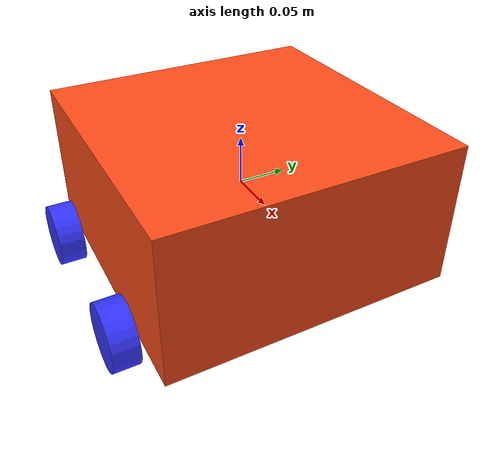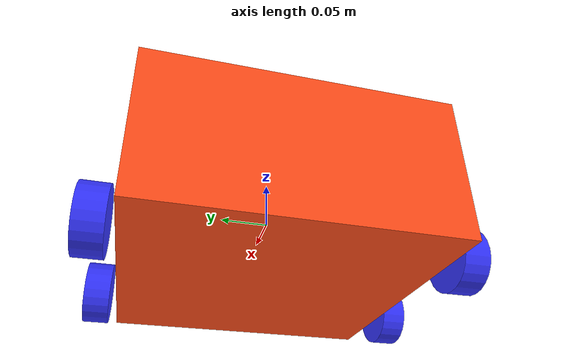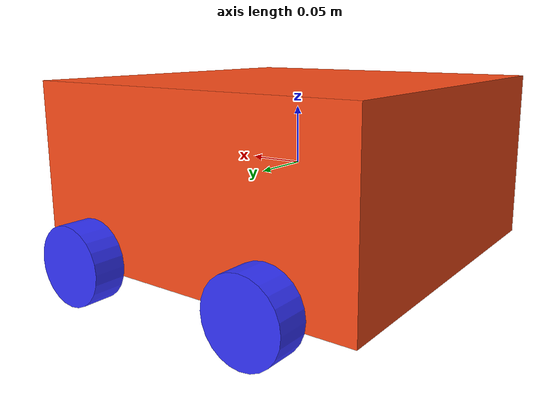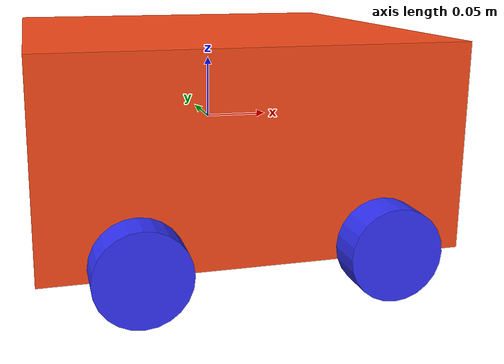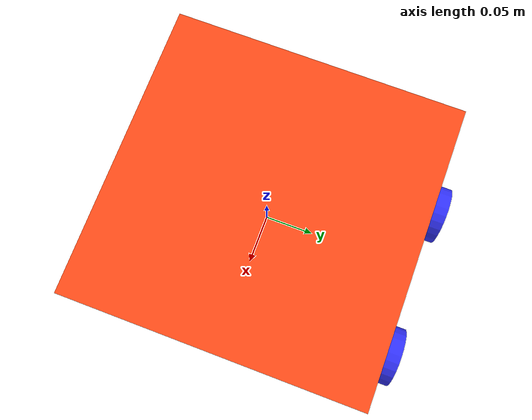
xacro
<?xml version="1.0"?>
<robot xmlns:xacro="http://www.ros.org/wiki/xacro" >

    <xacro:include filename="inertial_macros.xacro"/>

    <xacro:property name="chassis_length" value="0.3"/>
    <xacro:property name="chassis_width" value="0.3"/>
    <xacro:property name="chassis_height" value="0.15"/>
    <xacro:property name="chassis_mass" value="0.5"/>

    <xacro:property name="wheel_radius" value="0.0325"/>
    <xacro:property name="wheel_thickness" value="0.026"/>
    <xacro:property name="wheel_mass" value="0.05"/>

    <xacro:property name="wheel_offset_x" value="0.085"/>

    <xacro:property name="wheel_offset_y" value="0.17"/>
    <xacro:property name="wheel_offset_z" value="-0.0625"/>

    <material name="white"> <color rgba="1 1 1 1" /> </material>
    <material name="orange"> <color rgba="1 0.3 0.1 1"/> </material>
    <material name="blue"> <color rgba="0.2 0.2 1 1"/> </material>
    <material name="black"> <color rgba="0 0 0 1"/> </material>
    <material name="red"> <color rgba="1 0 0 1"/> </material>

    <link name="base_link"/>

    <joint name="chassis_joint" type="fixed">
        <parent link="base_link"/>
        <child link="chassis"/>
        <origin xyz="0 0 0" rpy="0 0 0"/>
    </joint>

    <link name="chassis">
        <visual>
            <origin xyz="0 0 0" rpy="0 0 0"/>
            <geometry> <box size="${chassis_length} ${chassis_width} ${chassis_height}"/> </geometry>
            <material name="orange"/>
        </visual>
        <collision>
            <origin xyz="0 0 0" rpy="0 0 0"/>
            <geometry> <box size="${chassis_length} ${chassis_width} ${chassis_height}"/> </geometry>
        </collision>
        <xacro:inertial_box mass="${chassis_mass}" x="${chassis_length}" y="${chassis_width}" z="${chassis_height}">
            <origin xyz="0 0 0" rpy="0 0 0"/>
        </xacro:inertial_box>
    </link>

    <gazebo reference="chassis"> <material>Gazebo/Orange</material> </gazebo>

    <joint name="base_footprint_joint" type="fixed">
        <parent link="base_link"/>
        <child link="base_footprint"/>

        <origin xyz="0 0 ${wheel_offset_z - wheel_radius}" rpy="0 0 0"/>
    </joint>
    <link name="base_footprint"/>

    <xacro:macro name="wheel" params="prefix side x_pos y_pos rpy_val axis_val">
        <joint name="${prefix}_${side}_wheel_joint" type="continuous">
            <parent link="base_link"/> <child link="${prefix}_${side}_wheel"/>
            <origin xyz="${x_pos} ${y_pos} ${wheel_offset_z}" rpy="${rpy_val}" />
            <axis xyz="${axis_val}"/>
        </joint>
        <link name="${prefix}_${side}_wheel">
            <visual>
                <geometry><cylinder radius="${wheel_radius}" length="${wheel_thickness}"/></geometry>
                <material name="blue"/>
            </visual>
            <collision>
                <geometry><cylinder radius="${wheel_radius}" length="${wheel_thickness}"/></geometry>

            </collision>
            <xacro:inertial_cylinder mass="${wheel_mass}" length="${wheel_thickness}" radius="${wheel_radius}">
                <origin xyz="0 0 0" rpy="0 0 0"/>
            </xacro:inertial_cylinder>
        </link>
        <gazebo reference="${prefix}_${side}_wheel">
            <material>Gazebo/Yellow</material>

            <xacro:if value="${prefix == 'front'}"> <!-- Apply normal friction to FRONT wheels -->
                <mu1>1.0</mu1>
                <mu2>0.2</mu2> <!-- Allow some sideways slip for steering if needed -->
            </xacro:if>
            <xacro:if value="${prefix == 'rear'}">  <!-- Apply very low friction to REAR wheels -->
                <mu1>0.001</mu1> <!-- Minimal forward/backward friction -->
                <mu2>0.001</mu2> <!-- Minimal sideways friction -->
            </xacro:if>
        </gazebo>
    </xacro:macro>

    <xacro:wheel prefix="front" side="left"  x_pos="${wheel_offset_x}" y_pos="${wheel_offset_y}"  rpy_val="-${pi/2} 0 0" axis_val="0 0 1"/>
    <xacro:wheel prefix="front" side="right" x_pos="${wheel_offset_x}" y_pos="-${wheel_offset_y}" rpy_val="${pi/2} 0 0"  axis_val="0 0 -1"/>
    <xacro:wheel prefix="rear"  side="left"  x_pos="-${wheel_offset_x}" y_pos="${wheel_offset_y}"  rpy_val="-${pi/2} 0 0" axis_val="0 0 1"/>
    <xacro:wheel prefix="rear"  side="right" x_pos="-${wheel_offset_x}" y_pos="-${wheel_offset_y}" rpy_val="${pi/2} 0 0"  axis_val="0 0 -1"/>

</robot>
